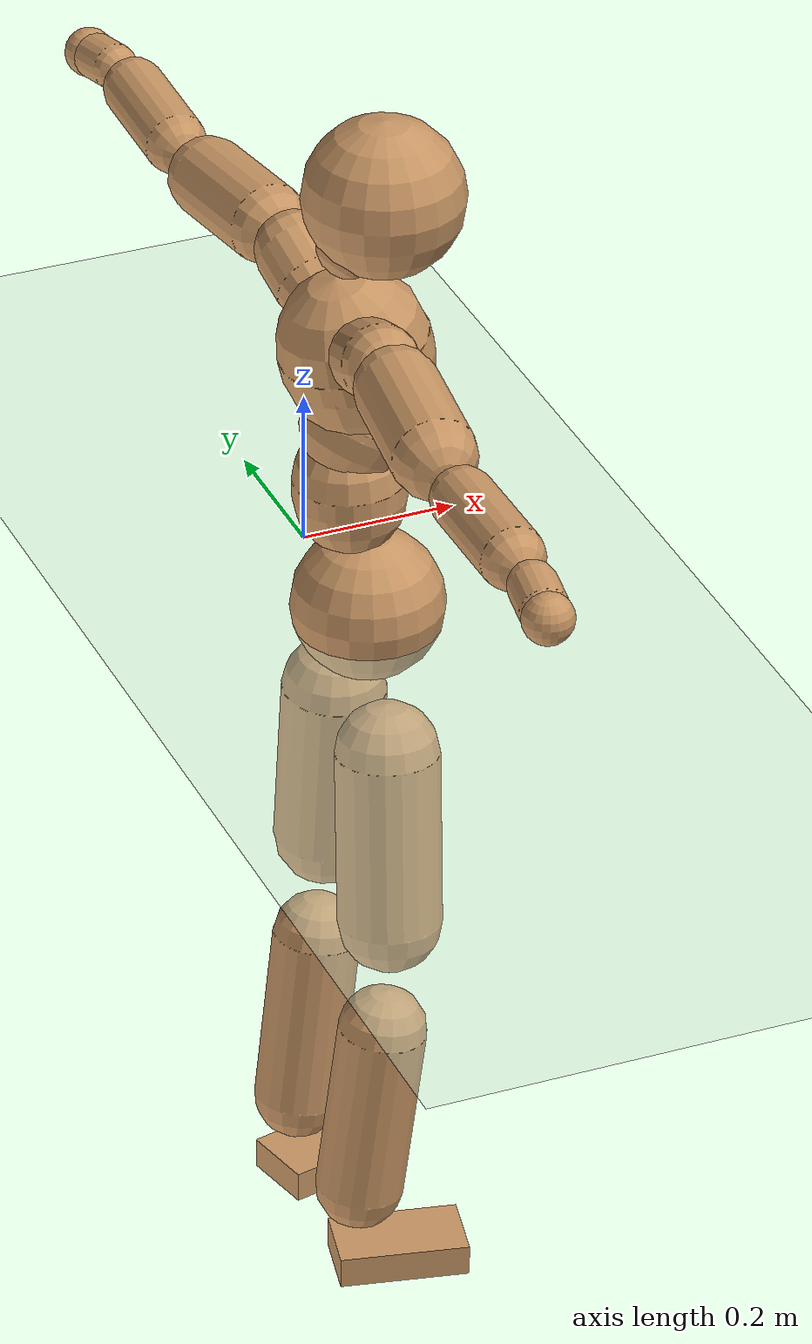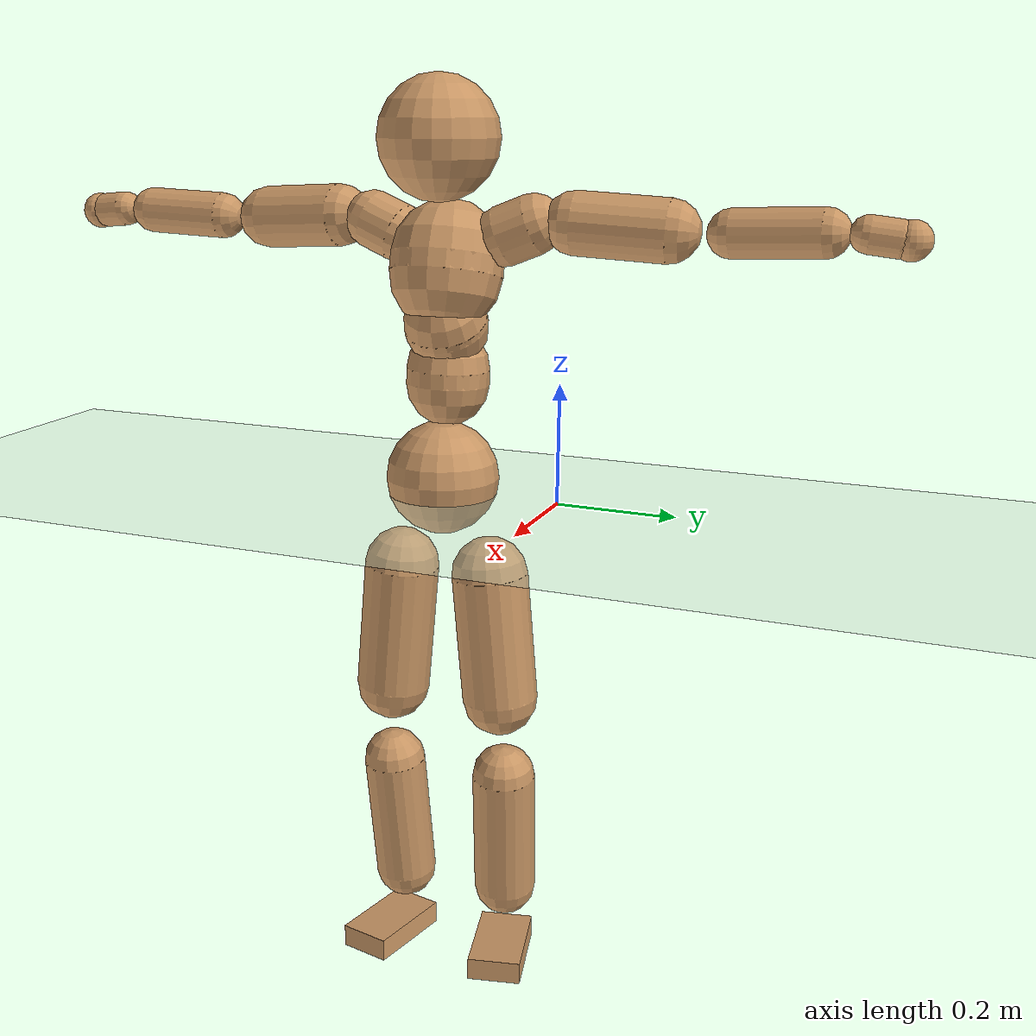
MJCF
<mujoco model="humanoid">
  <compiler coordinate="local" angle="radian"/>
  <default>
    <joint damping="0.0" armature="0.01" stiffness="0.0" limited="true"/>
    <geom conaffinity="1" condim="3" contype="7" margin="0.001" rgba="0.8 0.6 .4 1"/>
  </default>
  <asset>
    <texture type="skybox" builtin="gradient" rgb1=".4 .5 .6" rgb2="0 0 0" width="100" height="100"/>
    <texture builtin="flat" height="1278" mark="cross" markrgb="1 1 1" name="texgeom" random="0.01" rgb1="0.8 0.6 0.4" rgb2="0.8 0.6 0.4" type="cube" width="127"/>
    <texture builtin="checker" height="100" name="texplane" rgb1="0 0 0" rgb2="0.8 0.8 0.8" type="2d" width="100"/>
    <material name="MatPlane" reflectance="0.5" shininess="1" specular="1" texrepeat="60 60" texture="texplane"/>
    <material name="geom" texture="texgeom" texuniform="true"/>
  </asset>
  <worldbody>
    <light cutoff="100" diffuse="1 1 1" dir="-0 0 -1.3" directional="true" exponent="1" pos="0 0 1.3" specular=".1 .1 .1"/>
    <geom conaffinity="1" condim="3" name="floor" pos="0 0 0" rgba="0.8 0.9 0.8 1" size="100 100 .2" type="plane" material="MatPlane"/>
    <body name="Pelvis" pos="-0.0004 -0.208 0.0259">
      <freejoint name="Pelvis"/>
      <geom type="sphere" contype="1" conaffinity="1" density="500" size="0.0962" pos="0.0000 0.0000 0.0000" name="Pelvis"/>
      <body name="L_Hip" pos="-0.0088 0.0765 -0.0913">
        <joint name="L_Hip_x" type="hinge" pos="0 0 0" axis="1 0 0" stiffness="800" damping="80" armature="0.02" range="-180.0000 180.0000"/>
        <joint name="L_Hip_y" type="hinge" pos="0 0 0" axis="0 1 0" stiffness="800" damping="80" armature="0.02" range="-180.0000 180.0000"/>
        <joint name="L_Hip_z" type="hinge" pos="0 0 0" axis="0 0 1" stiffness="800" damping="80" armature="0.02" range="-180.0000 180.0000"/>
        <geom type="capsule" contype="1" conaffinity="1" density="500" fromto="-0.0011 0.0065 -0.0757 -0.0042 0.0259 -0.3029" size="0.066" name="L_Hip"/>
        <body name="L_Knee" pos="-0.0053 0.0323 -0.3786">
          <joint name="L_Knee_x" type="hinge" pos="0 0 0" axis="1 0 0" stiffness="800" damping="80" armature="0.02" range="-180.0000 180.0000"/>
          <joint name="L_Knee_y" type="hinge" pos="0 0 0" axis="0 1 0" stiffness="800" damping="80" armature="0.02" range="-180.0000 180.0000"/>
          <joint name="L_Knee_z" type="hinge" pos="0 0 0" axis="0 0 1" stiffness="800" damping="80" armature="0.02" range="-180.0000 180.0000"/>
          <geom type="capsule" contype="1" conaffinity="1" density="500" fromto="-0.0094 -0.0021 -0.0787 -0.0374 -0.0084 -0.3147" size="0.0558" name="L_Knee"/>
          <body name="L_Ankle" pos="-0.0468 -0.0106 -0.3934">
            <joint name="L_Ankle_x" type="hinge" pos="0 0 0" axis="1 0 0" stiffness="800" damping="80" armature="0.02" range="-180.0000 180.0000"/>
            <joint name="L_Ankle_y" type="hinge" pos="0 0 0" axis="0 1 0" stiffness="800" damping="80" armature="0.02" range="-180.0000 180.0000"/>
            <joint name="L_Ankle_z" type="hinge" pos="0 0 0" axis="0 0 1" stiffness="800" damping="80" armature="0.02" range="-180.0000 180.0000"/>
            <geom type="box" contype="1" conaffinity="1" density="500" pos="0.0572 0.0132 -0.0278" size="0.0817 0.0472 0.0201" quat="0.9935 0.0000 0.0000 0.1135" name="L_Ankle"/>
            <body name="L_Toe" pos="0.1143 0.0265 -0.0556">
              <joint name="L_Toe_x" type="hinge" pos="0 0 0" axis="1 0 0" stiffness="500" damping="50" armature="0.02" range="-180.0000 180.0000"/>
              <joint name="L_Toe_y" type="hinge" pos="0 0 0" axis="0 1 0" stiffness="500" damping="50" armature="0.02" range="-180.0000 180.0000"/>
              <joint name="L_Toe_z" type="hinge" pos="0 0 0" axis="0 0 1" stiffness="500" damping="50" armature="0.02" range="-180.0000 180.0000"/>
              <geom type="box" contype="1" conaffinity="1" density="500" pos="0.0000 0.0000 0.0281" size="0.0009 0.0023 0.001" quat="0.9928 0.0000 0.0000 0.1197" name="L_Toe"/>
            </body>
          </body>
        </body>
      </body>
      <body name="R_Hip" pos="-0.0057 -0.0743 -0.0901">
        <joint name="R_Hip_x" type="hinge" pos="0 0 0" axis="1 0 0" stiffness="800" damping="80" armature="0.02" range="-180.0000 180.0000"/>
        <joint name="R_Hip_y" type="hinge" pos="0 0 0" axis="0 1 0" stiffness="800" damping="80" armature="0.02" range="-180.0000 180.0000"/>
        <joint name="R_Hip_z" type="hinge" pos="0 0 0" axis="0 0 1" stiffness="800" damping="80" armature="0.02" range="-180.0000 180.0000"/>
        <geom type="capsule" contype="1" conaffinity="1" density="500" fromto="-0.0017 -0.0077 -0.0772 -0.0067 -0.0306 -0.3088" size="0.0652" name="R_Hip"/>
        <body name="R_Knee" pos="-0.0084 -0.0383 -0.3859">
          <joint name="R_Knee_x" type="hinge" pos="0 0 0" axis="1 0 0" stiffness="800" damping="80" armature="0.02" range="-180.0000 180.0000"/>
          <joint name="R_Knee_y" type="hinge" pos="0 0 0" axis="0 1 0" stiffness="800" damping="80" armature="0.02" range="-180.0000 180.0000"/>
          <joint name="R_Knee_z" type="hinge" pos="0 0 0" axis="0 0 1" stiffness="800" damping="80" armature="0.02" range="-180.0000 180.0000"/>
          <geom type="capsule" contype="1" conaffinity="1" density="500" fromto="-0.0090 0.0027 -0.0788 -0.0360 0.0108 -0.3153" size="0.0559" name="R_Knee"/>
          <body name="R_Ankle" pos="-0.0451 0.0135 -0.3941">
            <joint name="R_Ankle_x" type="hinge" pos="0 0 0" axis="1 0 0" stiffness="800" damping="80" armature="0.02" range="-180.0000 180.0000"/>
            <joint name="R_Ankle_y" type="hinge" pos="0 0 0" axis="0 1 0" stiffness="800" damping="80" armature="0.02" range="-180.0000 180.0000"/>
            <joint name="R_Ankle_z" type="hinge" pos="0 0 0" axis="0 0 1" stiffness="800" damping="80" armature="0.02" range="-180.0000 180.0000"/>
            <geom type="box" contype="1" conaffinity="1" density="500" pos="0.0590 -0.0125 -0.0240" size="0.0825 0.0461 0.0204" quat="0.9945 0.0000 0.0000 -0.1046" name="R_Ankle"/>
            <body name="R_Toe" pos="0.1179 -0.0251 -0.0481">
              <joint name="R_Toe_x" type="hinge" pos="0 0 0" axis="1 0 0" stiffness="500" damping="50" armature="0.02" range="-180.0000 180.0000"/>
              <joint name="R_Toe_y" type="hinge" pos="0 0 0" axis="0 1 0" stiffness="500" damping="50" armature="0.02" range="-180.0000 180.0000"/>
              <joint name="R_Toe_z" type="hinge" pos="0 0 0" axis="0 0 1" stiffness="500" damping="50" armature="0.02" range="-180.0000 180.0000"/>
              <geom type="box" contype="1" conaffinity="1" density="500" pos="0.0000 0.0000 0.0260" size="0.0008 0.0023 0.0011" quat="0.9955 0.0000 0.0000 -0.0950" name="R_Toe"/>
            </body>
          </body>
        </body>
      </body>
      <body name="Torso" pos="-0.023 -0.0026 0.1043">
        <joint name="Torso_x" type="hinge" pos="0 0 0" axis="1 0 0" stiffness="1000" damping="100" armature="0.02" range="-180.0000 180.0000"/>
        <joint name="Torso_y" type="hinge" pos="0 0 0" axis="0 1 0" stiffness="1000" damping="100" armature="0.02" range="-180.0000 180.0000"/>
        <joint name="Torso_z" type="hinge" pos="0 0 0" axis="0 0 1" stiffness="1000" damping="100" armature="0.02" range="-180.0000 180.0000"/>
        <geom type="capsule" contype="1" conaffinity="1" density="500" fromto="-0.0022 0.0022 0.0768 -0.0015 0.0015 0.0512" size="0.0702" name="Torso"/>
        <body name="Spine" pos="-0.0036 0.0037 0.1279">
          <joint name="Spine_x" type="hinge" pos="0 0 0" axis="1 0 0" stiffness="1000" damping="100" armature="0.02" range="-180.0000 180.0000"/>
          <joint name="Spine_y" type="hinge" pos="0 0 0" axis="0 1 0" stiffness="1000" damping="100" armature="0.02" range="-180.0000 180.0000"/>
          <joint name="Spine_z" type="hinge" pos="0 0 0" axis="0 0 1" stiffness="1000" damping="100" armature="0.02" range="-180.0000 180.0000"/>
          <geom type="capsule" contype="1" conaffinity="1" density="500" fromto="0.0171 0.0007 0.0297 0.0114 0.0005 0.0198" size="0.0703" name="Spine"/>
          <body name="Chest" pos="0.0285 0.0011 0.0494">
            <joint name="Chest_x" type="hinge" pos="0 0 0" axis="1 0 0" stiffness="1000" damping="100" armature="0.02" range="-180.0000 180.0000"/>
            <joint name="Chest_y" type="hinge" pos="0 0 0" axis="0 1 0" stiffness="1000" damping="100" armature="0.02" range="-180.0000 180.0000"/>
            <joint name="Chest_z" type="hinge" pos="0 0 0" axis="0 0 1" stiffness="1000" damping="100" armature="0.02" range="-180.0000 180.0000"/>
            <geom type="capsule" contype="1" conaffinity="1" density="500" fromto="-0.0218 -0.0009 0.0862 -0.0145 -0.0006 0.0574" size="0.0939" name="Chest"/>
            <body name="Neck" pos="-0.0382 -0.0025 0.2052">
              <joint name="Neck_x" type="hinge" pos="0 0 0" axis="1 0 0" stiffness="500" damping="50" armature="0.02" range="-180.0000 180.0000"/>
              <joint name="Neck_y" type="hinge" pos="0 0 0" axis="0 1 0" stiffness="500" damping="50" armature="0.02" range="-180.0000 180.0000"/>
              <joint name="Neck_z" type="hinge" pos="0 0 0" axis="0 0 1" stiffness="500" damping="50" armature="0.02" range="-180.0000 180.0000"/>
              <geom type="capsule" contype="1" conaffinity="1" density="500" fromto="0.0111 0.0008 0.0138 0.0445 0.0030 0.0551" size="0.0408" name="Neck"/>
              <body name="Head" pos="0.0556 0.0038 0.0689">
                <joint name="Head_x" type="hinge" pos="0 0 0" axis="1 0 0" stiffness="500" damping="50" armature="0.02" range="-180.0000 180.0000"/>
                <joint name="Head_y" type="hinge" pos="0 0 0" axis="0 1 0" stiffness="500" damping="50" armature="0.02" range="-180.0000 180.0000"/>
                <joint name="Head_z" type="hinge" pos="0 0 0" axis="0 0 1" stiffness="500" damping="50" armature="0.02" range="-180.0000 180.0000"/>
                <geom type="sphere" contype="1" conaffinity="1" density="500" size="0.0999" pos="0.0000 0.0000 0.0000" name="Head"/>
              </body>
            </body>
            <body name="L_Thorax" pos="-0.0324 0.0752 0.1139">
              <joint name="L_Thorax_x" type="hinge" pos="0 0 0" axis="1 0 0" stiffness="500" damping="50" armature="0.02" range="-180.0000 180.0000"/>
              <joint name="L_Thorax_y" type="hinge" pos="0 0 0" axis="0 1 0" stiffness="500" damping="50" armature="0.02" range="-180.0000 180.0000"/>
              <joint name="L_Thorax_z" type="hinge" pos="0 0 0" axis="0 0 1" stiffness="500" damping="50" armature="0.02" range="-180.0000 180.0000"/>
              <geom type="capsule" contype="1" conaffinity="1" density="500" fromto="-0.0018 0.0167 0.0067 -0.0071 0.0668 0.0266" size="0.0496" name="L_Thorax"/>
              <body name="L_Shoulder" pos="-0.0089 0.0835 0.0333">
                <joint name="L_Shoulder_x" type="hinge" pos="0 0 0" axis="1 0 0" stiffness="500" damping="50" armature="0.02" range="-720.0000 720.0000"/>
                <joint name="L_Shoulder_y" type="hinge" pos="0 0 0" axis="0 1 0" stiffness="500" damping="50" armature="0.02" range="-720.0000 720.0000"/>
                <joint name="L_Shoulder_z" type="hinge" pos="0 0 0" axis="0 0 1" stiffness="500" damping="50" armature="0.02" range="-720.0000 720.0000"/>
                <geom type="capsule" contype="1" conaffinity="1" density="500" fromto="-0.0059 0.0500 -0.0029 -0.0235 0.1998 -0.0116" size="0.0511" name="L_Shoulder"/>
                <body name="L_Elbow" pos="-0.0293 0.2498 -0.0145">
                  <joint name="L_Elbow_x" type="hinge" pos="0 0 0" axis="1 0 0" stiffness="500" damping="50" armature="0.02" range="-720.0000 720.0000"/>
                  <joint name="L_Elbow_y" type="hinge" pos="0 0 0" axis="0 1 0" stiffness="500" damping="50" armature="0.02" range="-720.0000 720.0000"/>
                  <joint name="L_Elbow_z" type="hinge" pos="0 0 0" axis="0 0 1" stiffness="500" damping="50" armature="0.02" range="-720.0000 720.0000"/>
                  <geom type="capsule" contype="1" conaffinity="1" density="500" fromto="0.0000 0.0474 0.0020 0.0001 0.1895 0.0080" size="0.0393" name="L_Elbow"/>
                  <body name="L_Wrist" pos="0.0001 0.2368 0.01">
                    <joint name="L_Wrist_x" type="hinge" pos="0 0 0" axis="1 0 0" stiffness="300" damping="30" armature="0.02" range="-180.0000 180.0000"/>
                    <joint name="L_Wrist_y" type="hinge" pos="0 0 0" axis="0 1 0" stiffness="300" damping="30" armature="0.02" range="-180.0000 180.0000"/>
                    <joint name="L_Wrist_z" type="hinge" pos="0 0 0" axis="0 0 1" stiffness="300" damping="30" armature="0.02" range="-180.0000 180.0000"/>
                    <geom type="capsule" contype="1" conaffinity="1" density="500" fromto="-0.0026 0.0155 -0.0019 -0.0103 0.0618 -0.0077" size="0.0294" name="L_Wrist"/>
                    <body name="L_Hand" pos="-0.0128 0.0773 -0.0096">
                      <joint name="L_Hand_x" type="hinge" pos="0 0 0" axis="1 0 0" stiffness="300" damping="30" armature="0.02" range="-180.0000 180.0000"/>
                      <joint name="L_Hand_y" type="hinge" pos="0 0 0" axis="0 1 0" stiffness="300" damping="30" armature="0.02" range="-180.0000 180.0000"/>
                      <joint name="L_Hand_z" type="hinge" pos="0 0 0" axis="0 0 1" stiffness="300" damping="30" armature="0.02" range="-180.0000 180.0000"/>
                      <geom type="sphere" contype="1" conaffinity="1" density="500" size="0.0312" pos="0.0000 0.0000 0.0000" name="L_Hand"/>
                    </body>
                  </body>
                </body>
              </body>
            </body>
            <body name="R_Thorax" pos="-0.0386 -0.0771 0.1117">
              <joint name="R_Thorax_x" type="hinge" pos="0 0 0" axis="1 0 0" stiffness="500" damping="50" armature="0.02" range="-180.0000 180.0000"/>
              <joint name="R_Thorax_y" type="hinge" pos="0 0 0" axis="0 1 0" stiffness="500" damping="50" armature="0.02" range="-180.0000 180.0000"/>
              <joint name="R_Thorax_z" type="hinge" pos="0 0 0" axis="0 0 1" stiffness="500" damping="50" armature="0.02" range="-180.0000 180.0000"/>
              <geom type="capsule" contype="1" conaffinity="1" density="500" fromto="-0.0021 -0.0174 0.0068 -0.0085 -0.0698 0.0274" size="0.0483" name="R_Thorax"/>
              <body name="R_Shoulder" pos="-0.0107 -0.0872 0.0342">
                <joint name="R_Shoulder_x" type="hinge" pos="0 0 0" axis="1 0 0" stiffness="500" damping="50" armature="0.02" range="-720.0000 720.0000"/>
                <joint name="R_Shoulder_y" type="hinge" pos="0 0 0" axis="0 1 0" stiffness="500" damping="50" armature="0.02" range="-720.0000 720.0000"/>
                <joint name="R_Shoulder_z" type="hinge" pos="0 0 0" axis="0 0 1" stiffness="500" damping="50" armature="0.02" range="-720.0000 720.0000"/>
                <geom type="capsule" contype="1" conaffinity="1" density="500" fromto="-0.0048 -0.0488 -0.0028 -0.0193 -0.1951 -0.0113" size="0.0521" name="R_Shoulder"/>
                <body name="R_Elbow" pos="-0.0241 -0.2439 -0.0141">
                  <joint name="R_Elbow_x" type="hinge" pos="0 0 0" axis="1 0 0" stiffness="500" damping="50" armature="0.02" range="-720.0000 720.0000"/>
                  <joint name="R_Elbow_y" type="hinge" pos="0 0 0" axis="0 1 0" stiffness="500" damping="50" armature="0.02" range="-720.0000 720.0000"/>
                  <joint name="R_Elbow_z" type="hinge" pos="0 0 0" axis="0 0 1" stiffness="500" damping="50" armature="0.02" range="-720.0000 720.0000"/>
                  <geom type="capsule" contype="1" conaffinity="1" density="500" fromto="-0.0006 -0.0487 0.0017 -0.0025 -0.1949 0.0067" size="0.0394" name="R_Elbow"/>
                  <body name="R_Wrist" pos="-0.0032 -0.2436 0.0084">
                    <joint name="R_Wrist_x" type="hinge" pos="0 0 0" axis="1 0 0" stiffness="300" damping="30" armature="0.02" range="-180.0000 180.0000"/>
                    <joint name="R_Wrist_y" type="hinge" pos="0 0 0" axis="0 1 0" stiffness="300" damping="30" armature="0.02" range="-180.0000 180.0000"/>
                    <joint name="R_Wrist_z" type="hinge" pos="0 0 0" axis="0 0 1" stiffness="300" damping="30" armature="0.02" range="-180.0000 180.0000"/>
                    <geom type="capsule" contype="1" conaffinity="1" density="500" fromto="-0.0020 -0.0155 -0.0014 -0.0080 -0.0619 -0.0057" size="0.03" name="R_Wrist"/>
                    <body name="R_Hand" pos="-0.01 -0.0774 -0.0071">
                      <joint name="R_Hand_x" type="hinge" pos="0 0 0" axis="1 0 0" stiffness="300" damping="30" armature="0.02" range="-180.0000 180.0000"/>
                      <joint name="R_Hand_y" type="hinge" pos="0 0 0" axis="0 1 0" stiffness="300" damping="30" armature="0.02" range="-180.0000 180.0000"/>
                      <joint name="R_Hand_z" type="hinge" pos="0 0 0" axis="0 0 1" stiffness="300" damping="30" armature="0.02" range="-180.0000 180.0000"/>
                      <geom type="sphere" contype="1" conaffinity="1" density="500" size="0.0313" pos="0.0000 0.0000 0.0000" name="R_Hand"/>
                    </body>
                  </body>
                </body>
              </body>
            </body>
          </body>
        </body>
      </body>
    </body>
  </worldbody>
  <actuator>
    <motor name="L_Hip_x" joint="L_Hip_x" gear="500"/>
    <motor name="L_Hip_y" joint="L_Hip_y" gear="500"/>
    <motor name="L_Hip_z" joint="L_Hip_z" gear="500"/>
    <motor name="L_Knee_x" joint="L_Knee_x" gear="500"/>
    <motor name="L_Knee_y" joint="L_Knee_y" gear="500"/>
    <motor name="L_Knee_z" joint="L_Knee_z" gear="500"/>
    <motor name="L_Ankle_x" joint="L_Ankle_x" gear="500"/>
    <motor name="L_Ankle_y" joint="L_Ankle_y" gear="500"/>
    <motor name="L_Ankle_z" joint="L_Ankle_z" gear="500"/>
    <motor name="L_Toe_x" joint="L_Toe_x" gear="500"/>
    <motor name="L_Toe_y" joint="L_Toe_y" gear="500"/>
    <motor name="L_Toe_z" joint="L_Toe_z" gear="500"/>
    <motor name="R_Hip_x" joint="R_Hip_x" gear="500"/>
    <motor name="R_Hip_y" joint="R_Hip_y" gear="500"/>
    <motor name="R_Hip_z" joint="R_Hip_z" gear="500"/>
    <motor name="R_Knee_x" joint="R_Knee_x" gear="500"/>
    <motor name="R_Knee_y" joint="R_Knee_y" gear="500"/>
    <motor name="R_Knee_z" joint="R_Knee_z" gear="500"/>
    <motor name="R_Ankle_x" joint="R_Ankle_x" gear="500"/>
    <motor name="R_Ankle_y" joint="R_Ankle_y" gear="500"/>
    <motor name="R_Ankle_z" joint="R_Ankle_z" gear="500"/>
    <motor name="R_Toe_x" joint="R_Toe_x" gear="500"/>
    <motor name="R_Toe_y" joint="R_Toe_y" gear="500"/>
    <motor name="R_Toe_z" joint="R_Toe_z" gear="500"/>
    <motor name="Torso_x" joint="Torso_x" gear="500"/>
    <motor name="Torso_y" joint="Torso_y" gear="500"/>
    <motor name="Torso_z" joint="Torso_z" gear="500"/>
    <motor name="Spine_x" joint="Spine_x" gear="500"/>
    <motor name="Spine_y" joint="Spine_y" gear="500"/>
    <motor name="Spine_z" joint="Spine_z" gear="500"/>
    <motor name="Chest_x" joint="Chest_x" gear="500"/>
    <motor name="Chest_y" joint="Chest_y" gear="500"/>
    <motor name="Chest_z" joint="Chest_z" gear="500"/>
    <motor name="Neck_x" joint="Neck_x" gear="500"/>
    <motor name="Neck_y" joint="Neck_y" gear="500"/>
    <motor name="Neck_z" joint="Neck_z" gear="500"/>
    <motor name="Head_x" joint="Head_x" gear="500"/>
    <motor name="Head_y" joint="Head_y" gear="500"/>
    <motor name="Head_z" joint="Head_z" gear="500"/>
    <motor name="L_Thorax_x" joint="L_Thorax_x" gear="500"/>
    <motor name="L_Thorax_y" joint="L_Thorax_y" gear="500"/>
    <motor name="L_Thorax_z" joint="L_Thorax_z" gear="500"/>
    <motor name="L_Shoulder_x" joint="L_Shoulder_x" gear="500"/>
    <motor name="L_Shoulder_y" joint="L_Shoulder_y" gear="500"/>
    <motor name="L_Shoulder_z" joint="L_Shoulder_z" gear="500"/>
    <motor name="L_Elbow_x" joint="L_Elbow_x" gear="500"/>
    <motor name="L_Elbow_y" joint="L_Elbow_y" gear="500"/>
    <motor name="L_Elbow_z" joint="L_Elbow_z" gear="500"/>
    <motor name="L_Wrist_x" joint="L_Wrist_x" gear="500"/>
    <motor name="L_Wrist_y" joint="L_Wrist_y" gear="500"/>
    <motor name="L_Wrist_z" joint="L_Wrist_z" gear="500"/>
    <motor name="L_Hand_x" joint="L_Hand_x" gear="500"/>
    <motor name="L_Hand_y" joint="L_Hand_y" gear="500"/>
    <motor name="L_Hand_z" joint="L_Hand_z" gear="500"/>
    <motor name="R_Thorax_x" joint="R_Thorax_x" gear="500"/>
    <motor name="R_Thorax_y" joint="R_Thorax_y" gear="500"/>
    <motor name="R_Thorax_z" joint="R_Thorax_z" gear="500"/>
    <motor name="R_Shoulder_x" joint="R_Shoulder_x" gear="500"/>
    <motor name="R_Shoulder_y" joint="R_Shoulder_y" gear="500"/>
    <motor name="R_Shoulder_z" joint="R_Shoulder_z" gear="500"/>
    <motor name="R_Elbow_x" joint="R_Elbow_x" gear="500"/>
    <motor name="R_Elbow_y" joint="R_Elbow_y" gear="500"/>
    <motor name="R_Elbow_z" joint="R_Elbow_z" gear="500"/>
    <motor name="R_Wrist_x" joint="R_Wrist_x" gear="500"/>
    <motor name="R_Wrist_y" joint="R_Wrist_y" gear="500"/>
    <motor name="R_Wrist_z" joint="R_Wrist_z" gear="500"/>
    <motor name="R_Hand_x" joint="R_Hand_x" gear="500"/>
    <motor name="R_Hand_y" joint="R_Hand_y" gear="500"/>
    <motor name="R_Hand_z" joint="R_Hand_z" gear="500"/>
  </actuator>
  <contact>
    <exclude body1="Torso" body2="Chest"/>
    <exclude body1="Head" body2="Chest"/>
    <exclude body1="R_Knee" body2="R_Toe"/>
    <exclude body1="R_Knee" body2="L_Ankle"/>
    <exclude body1="R_Knee" body2="L_Toe"/>
    <exclude body1="L_Knee" body2="L_Toe"/>
    <exclude body1="L_Knee" body2="R_Ankle"/>
    <exclude body1="L_Knee" body2="R_Toe"/>
    <exclude body1="L_Shoulder" body2="Chest"/>
    <exclude body1="R_Shoulder" body2="Chest"/>
  </contact>
  <sensor/>
  <size njmax="700" nconmax="700"/>
</mujoco>
